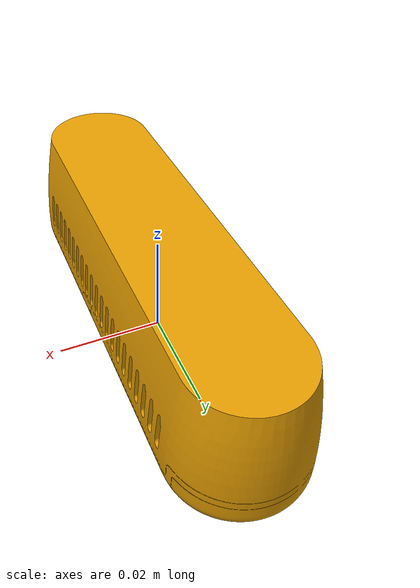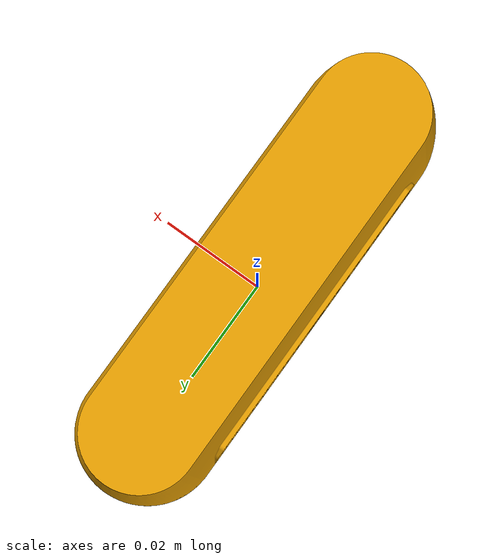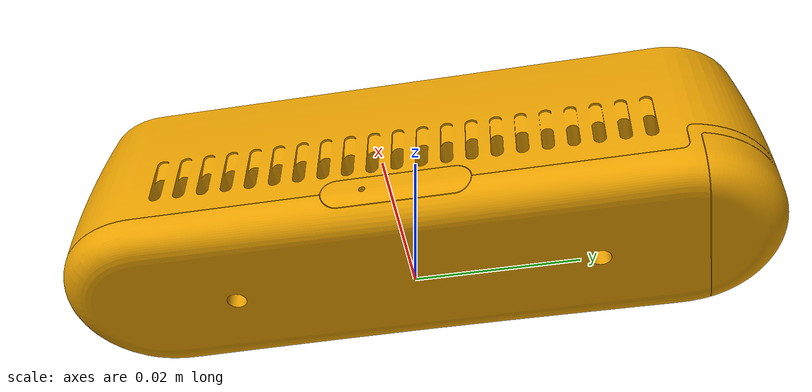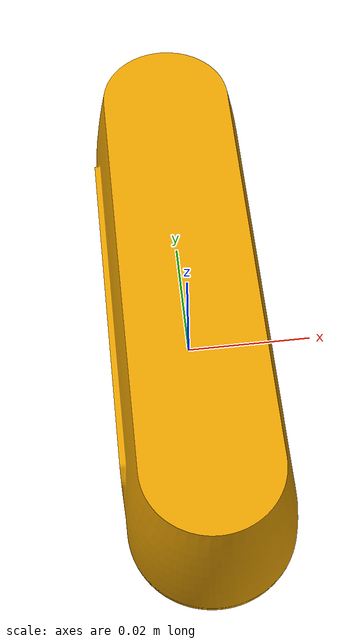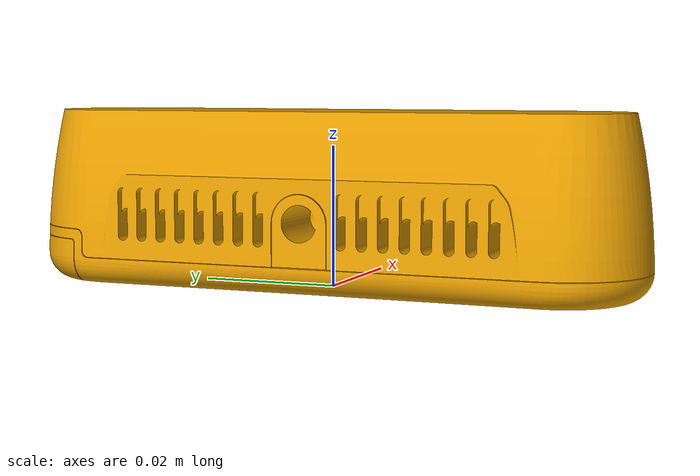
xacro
<?xml version='1.0' encoding='utf-8'?>
<robot xmlns:xacro="http://www.ros.org/wiki/xacro" name="d435">
  <xacro:include filename="$(find mz04_description)/robots/d435.xacro" />

  <!-- for simulation -->
  <!-- end for simulation -->

  <xacro:d435 />

  <!-- for simulation -->
  <!-- end for simulation -->

</robot>

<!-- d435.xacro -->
<robot xmlns:xacro="http://www.ros.org/wiki/xacro" name="d435">
  <xacro:macro name="d435" params="connected_to:='' ns:='' rpy:='0 0 0' xyz:='0 0 0' ">
    <xacro:unless value="${connected_to == ''}">
      <joint name="${ns}_d435_joint" type="fixed">
        <parent link="${connected_to}"/>
        <child link="${ns}_d435"/>
        <origin xyz="${xyz}" rpy="${rpy}"/>
      </joint>
    </xacro:unless>
    <link name="${ns}_d435">
      <visual>
        <geometry>
          <mesh filename="package://mz04_description/meshes/visual/d435.dae"/>
        </geometry>
      </visual>
      <collision>
        <geometry>
          <mesh filename="package://mz04_description/meshes/collision/d435.stl"/>
        </geometry>
      </collision>

      <!-- for simulation -->
      <inertial>
        <origin xyz="0 0 0" rpy="0 0 0" />
        <mass value="0.1" />
        <inertia ixx="0.01" ixy="0.0" ixz="0.0" iyy="0.01" iyz="0.0" izz="0.01" />
      </inertial>
      <!-- end for simulation -->
    </link>
  </xacro:macro>
</robot>
